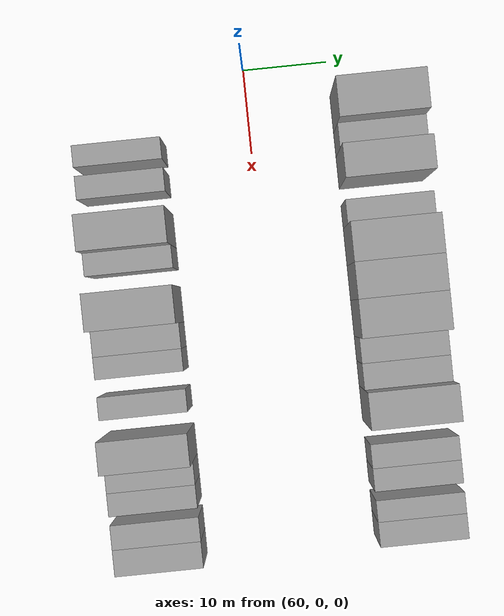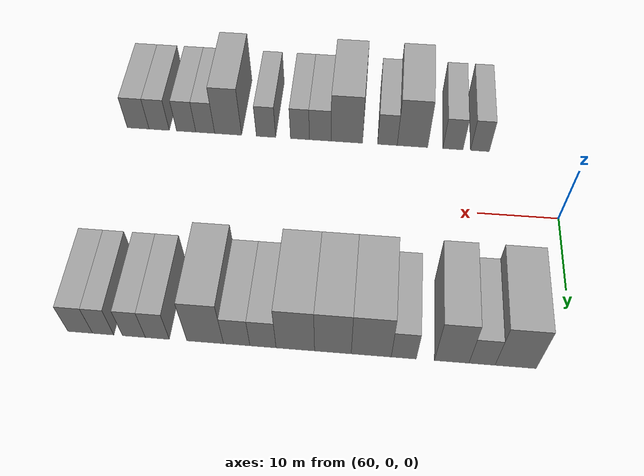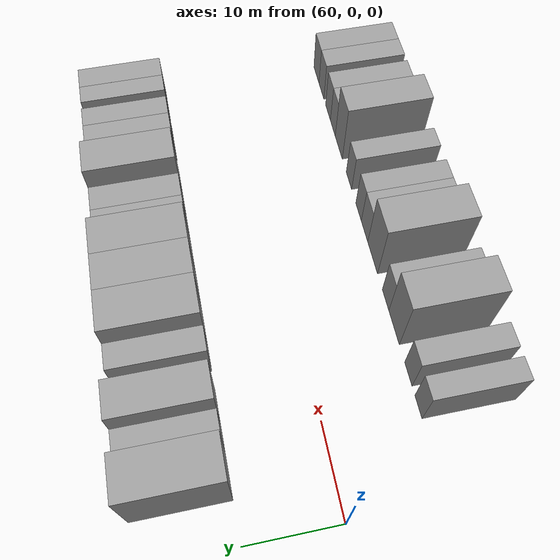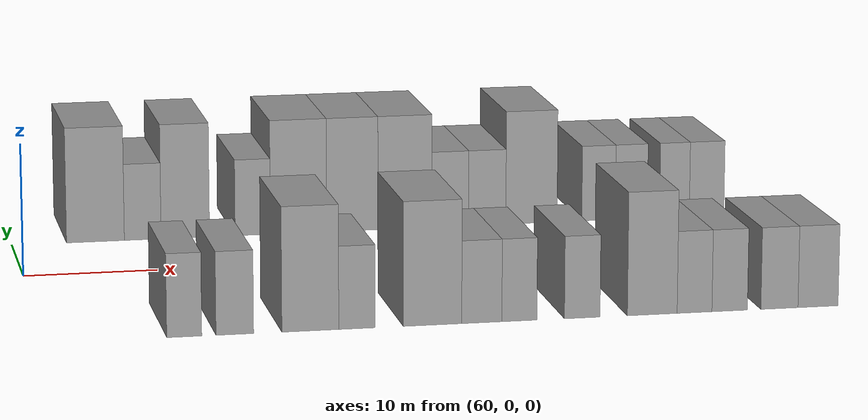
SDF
<sdf version="1.6">
 <world name="default">
  <model name="building_14">
   <static>1</static>
   <pose>66.4321 15.0000 0 0.000000 0.000000 1.570796</pose>
   <link name="link">
    <pose>0 0 4.50 0 0 0</pose>
    <collision name="collision"><geometry><box><size>10.0000 4.4736 9.0000</size></box></geometry></collision>
    <visual name="visual">
     <cast_shadows>0</cast_shadows>
     <geometry><box><size>10.0000 4.4736 9.0000</size></box></geometry>
     <material>
      <script>
       <uri>model://grey_wall/materials/scripts</uri>
       <uri>model://grey_wall/materials/textures</uri>
       <name>vrc/grey_wall</name>
      </script>
     </material>
    </visual>
   </link>
  </model>
  <model name="building_15">
   <static>1</static>
   <pose>70.0951 15.0000 0 0.000000 0.000000 1.570796</pose>
   <link name="link">
    <pose>0 0 3.00 0 0 0</pose>
    <collision name="collision"><geometry><box><size>10.0000 2.8523 6.0000</size></box></geometry></collision>
    <visual name="visual">
     <cast_shadows>0</cast_shadows>
     <geometry><box><size>10.0000 2.8523 6.0000</size></box></geometry>
     <material>
      <script>
       <uri>model://grey_wall/materials/scripts</uri>
       <uri>model://grey_wall/materials/textures</uri>
       <name>vrc/grey_wall</name>
      </script>
     </material>
    </visual>
   </link>
  </model>
  <model name="building_16">
   <static>1</static>
   <pose>73.4118 15.0000 0 0.000000 0.000000 1.570796</pose>
   <link name="link">
    <pose>0 0 4.50 0 0 0</pose>
    <collision name="collision"><geometry><box><size>10.0000 3.7812 9.0000</size></box></geometry></collision>
    <visual name="visual">
     <cast_shadows>0</cast_shadows>
     <geometry><box><size>10.0000 3.7812 9.0000</size></box></geometry>
     <material>
      <script>
       <uri>model://grey_wall/materials/scripts</uri>
       <uri>model://grey_wall/materials/textures</uri>
       <name>vrc/grey_wall</name>
      </script>
     </material>
    </visual>
   </link>
  </model>
  <model name="building_17">
   <static>1</static>
   <pose>78.6862 15.0000 0 0.000000 0.000000 1.570796</pose>
   <link name="link">
    <pose>0 0 3.00 0 0 0</pose>
    <collision name="collision"><geometry><box><size>10.0000 2.7675 6.0000</size></box></geometry></collision>
    <visual name="visual">
     <cast_shadows>0</cast_shadows>
     <geometry><box><size>10.0000 2.7675 6.0000</size></box></geometry>
     <material>
      <script>
       <uri>model://grey_wall/materials/scripts</uri>
       <uri>model://grey_wall/materials/textures</uri>
       <name>vrc/grey_wall</name>
      </script>
     </material>
    </visual>
   </link>
  </model>
  <model name="building_18">
   <static>1</static>
   <pose>82.2870 15.0000 0 0.000000 0.000000 1.570796</pose>
   <link name="link">
    <pose>0 0 4.50 0 0 0</pose>
    <collision name="collision"><geometry><box><size>10.0000 4.4342 9.0000</size></box></geometry></collision>
    <visual name="visual">
     <cast_shadows>0</cast_shadows>
     <geometry><box><size>10.0000 4.4342 9.0000</size></box></geometry>
     <material>
      <script>
       <uri>model://grey_wall/materials/scripts</uri>
       <uri>model://grey_wall/materials/textures</uri>
       <name>vrc/grey_wall</name>
      </script>
     </material>
    </visual>
   </link>
  </model>
  <model name="building_19">
   <static>1</static>
   <pose>86.5421 15.0000 0 0.000000 0.000000 1.570796</pose>
   <link name="link">
    <pose>0 0 4.50 0 0 0</pose>
    <collision name="collision"><geometry><box><size>10.0000 4.0760 9.0000</size></box></geometry></collision>
    <visual name="visual">
     <cast_shadows>0</cast_shadows>
     <geometry><box><size>10.0000 4.0760 9.0000</size></box></geometry>
     <material>
      <script>
       <uri>model://grey_wall/materials/scripts</uri>
       <uri>model://grey_wall/materials/textures</uri>
       <name>vrc/grey_wall</name>
      </script>
     </material>
    </visual>
   </link>
  </model>
  <model name="building_20">
   <static>1</static>
   <pose>90.7308 15.0000 0 0.000000 0.000000 1.570796</pose>
   <link name="link">
    <pose>0 0 4.50 0 0 0</pose>
    <collision name="collision"><geometry><box><size>10.0000 4.3013 9.0000</size></box></geometry></collision>
    <visual name="visual">
     <cast_shadows>0</cast_shadows>
     <geometry><box><size>10.0000 4.3013 9.0000</size></box></geometry>
     <material>
      <script>
       <uri>model://grey_wall/materials/scripts</uri>
       <uri>model://grey_wall/materials/textures</uri>
       <name>vrc/grey_wall</name>
      </script>
     </material>
    </visual>
   </link>
  </model>
  <model name="building_21">
   <static>1</static>
   <pose>94.3463 15.0000 0 0.000000 0.000000 1.570796</pose>
   <link name="link">
    <pose>0 0 3.00 0 0 0</pose>
    <collision name="collision"><geometry><box><size>10.0000 2.9298 6.0000</size></box></geometry></collision>
    <visual name="visual">
     <cast_shadows>0</cast_shadows>
     <geometry><box><size>10.0000 2.9298 6.0000</size></box></geometry>
     <material>
      <script>
       <uri>model://grey_wall/materials/scripts</uri>
       <uri>model://grey_wall/materials/textures</uri>
       <name>vrc/grey_wall</name>
      </script>
     </material>
    </visual>
   </link>
  </model>
  <model name="building_22">
   <static>1</static>
   <pose>97.3043 15.0000 0 0.000000 0.000000 1.570796</pose>
   <link name="link">
    <pose>0 0 3.00 0 0 0</pose>
    <collision name="collision"><geometry><box><size>10.0000 2.9861 6.0000</size></box></geometry></collision>
    <visual name="visual">
     <cast_shadows>0</cast_shadows>
     <geometry><box><size>10.0000 2.9861 6.0000</size></box></geometry>
     <material>
      <script>
       <uri>model://grey_wall/materials/scripts</uri>
       <uri>model://grey_wall/materials/textures</uri>
       <name>vrc/grey_wall</name>
      </script>
     </material>
    </visual>
   </link>
  </model>
  <model name="building_23">
   <static>1</static>
   <pose>100.8639 15.0000 0 0.000000 0.000000 1.570796</pose>
   <link name="link">
    <pose>0 0 4.50 0 0 0</pose>
    <collision name="collision"><geometry><box><size>10.0000 4.1332 9.0000</size></box></geometry></collision>
    <visual name="visual">
     <cast_shadows>0</cast_shadows>
     <geometry><box><size>10.0000 4.1332 9.0000</size></box></geometry>
     <material>
      <script>
       <uri>model://grey_wall/materials/scripts</uri>
       <uri>model://grey_wall/materials/textures</uri>
       <name>vrc/grey_wall</name>
      </script>
     </material>
    </visual>
   </link>
  </model>
  <model name="building_24">
   <static>1</static>
   <pose>106.2925 15.0000 0 0.000000 0.000000 1.570796</pose>
   <link name="link">
    <pose>0 0 3.00 0 0 0</pose>
    <collision name="collision"><geometry><box><size>10.0000 2.7241 6.0000</size></box></geometry></collision>
    <visual name="visual">
     <cast_shadows>0</cast_shadows>
     <geometry><box><size>10.0000 2.7241 6.0000</size></box></geometry>
     <material>
      <script>
       <uri>model://grey_wall/materials/scripts</uri>
       <uri>model://grey_wall/materials/textures</uri>
       <name>vrc/grey_wall</name>
      </script>
     </material>
    </visual>
   </link>
  </model>
  <model name="building_25">
   <static>1</static>
   <pose>108.9550 15.0000 0 0.000000 0.000000 1.570796</pose>
   <link name="link">
    <pose>0 0 3.00 0 0 0</pose>
    <collision name="collision"><geometry><box><size>10.0000 2.6010 6.0000</size></box></geometry></collision>
    <visual name="visual">
     <cast_shadows>0</cast_shadows>
     <geometry><box><size>10.0000 2.6010 6.0000</size></box></geometry>
     <material>
      <script>
       <uri>model://grey_wall/materials/scripts</uri>
       <uri>model://grey_wall/materials/textures</uri>
       <name>vrc/grey_wall</name>
      </script>
     </material>
    </visual>
   </link>
  </model>
  <model name="building_26">
   <static>1</static>
   <pose>112.4720 15.0000 0 0.000000 0.000000 1.570796</pose>
   <link name="link">
    <pose>0 0 3.00 0 0 0</pose>
    <collision name="collision"><geometry><box><size>10.0000 2.4330 6.0000</size></box></geometry></collision>
    <visual name="visual">
     <cast_shadows>0</cast_shadows>
     <geometry><box><size>10.0000 2.4330 6.0000</size></box></geometry>
     <material>
      <script>
       <uri>model://grey_wall/materials/scripts</uri>
       <uri>model://grey_wall/materials/textures</uri>
       <name>vrc/grey_wall</name>
      </script>
     </material>
    </visual>
   </link>
  </model>
  <model name="building_27">
   <static>1</static>
   <pose>115.1053 15.0000 0 0.000000 0.000000 1.570796</pose>
   <link name="link">
    <pose>0 0 3.00 0 0 0</pose>
    <collision name="collision"><geometry><box><size>10.0000 2.8334 6.0000</size></box></geometry></collision>
    <visual name="visual">
     <cast_shadows>0</cast_shadows>
     <geometry><box><size>10.0000 2.8334 6.0000</size></box></geometry>
     <material>
      <script>
       <uri>model://grey_wall/materials/scripts</uri>
       <uri>model://grey_wall/materials/textures</uri>
       <name>vrc/grey_wall</name>
      </script>
     </material>
    </visual>
   </link>
  </model>
  <model name="building_69">
   <static>1</static>
   <pose>69.4085 -15.0000 0 0.000000 0.000000 1.570796</pose>
   <link name="link">
    <pose>0 0 3.00 0 0 0</pose>
    <collision name="collision"><geometry><box><size>10.0000 2.4626 6.0000</size></box></geometry></collision>
    <visual name="visual">
     <cast_shadows>0</cast_shadows>
     <geometry><box><size>10.0000 2.4626 6.0000</size></box></geometry>
     <material>
      <script>
       <uri>model://grey_wall/materials/scripts</uri>
       <uri>model://grey_wall/materials/textures</uri>
       <name>vrc/grey_wall</name>
      </script>
     </material>
    </visual>
   </link>
  </model>
  <model name="building_70">
   <static>1</static>
   <pose>72.9666 -15.0000 0 0.000000 0.000000 1.570796</pose>
   <link name="link">
    <pose>0 0 3.00 0 0 0</pose>
    <collision name="collision"><geometry><box><size>10.0000 2.6536 6.0000</size></box></geometry></collision>
    <visual name="visual">
     <cast_shadows>0</cast_shadows>
     <geometry><box><size>10.0000 2.6536 6.0000</size></box></geometry>
     <material>
      <script>
       <uri>model://grey_wall/materials/scripts</uri>
       <uri>model://grey_wall/materials/textures</uri>
       <name>vrc/grey_wall</name>
      </script>
     </material>
    </visual>
   </link>
  </model>
  <model name="building_71">
   <static>1</static>
   <pose>78.3152 -15.0000 0 0.000000 0.000000 1.570796</pose>
   <link name="link">
    <pose>0 0 4.50 0 0 0</pose>
    <collision name="collision"><geometry><box><size>10.0000 4.0437 9.0000</size></box></geometry></collision>
    <visual name="visual">
     <cast_shadows>0</cast_shadows>
     <geometry><box><size>10.0000 4.0437 9.0000</size></box></geometry>
     <material>
      <script>
       <uri>model://grey_wall/materials/scripts</uri>
       <uri>model://grey_wall/materials/textures</uri>
       <name>vrc/grey_wall</name>
      </script>
     </material>
    </visual>
   </link>
  </model>
  <model name="building_72">
   <static>1</static>
   <pose>81.6415 -15.0000 0 0.000000 0.000000 1.570796</pose>
   <link name="link">
    <pose>0 0 3.00 0 0 0</pose>
    <collision name="collision"><geometry><box><size>10.0000 2.6089 6.0000</size></box></geometry></collision>
    <visual name="visual">
     <cast_shadows>0</cast_shadows>
     <geometry><box><size>10.0000 2.6089 6.0000</size></box></geometry>
     <material>
      <script>
       <uri>model://grey_wall/materials/scripts</uri>
       <uri>model://grey_wall/materials/textures</uri>
       <name>vrc/grey_wall</name>
      </script>
     </material>
    </visual>
   </link>
  </model>
  <model name="building_73">
   <static>1</static>
   <pose>87.0492 -15.0000 0 0.000000 0.000000 1.570796</pose>
   <link name="link">
    <pose>0 0 4.50 0 0 0</pose>
    <collision name="collision"><geometry><box><size>10.0000 4.2065 9.0000</size></box></geometry></collision>
    <visual name="visual">
     <cast_shadows>0</cast_shadows>
     <geometry><box><size>10.0000 4.2065 9.0000</size></box></geometry>
     <material>
      <script>
       <uri>model://grey_wall/materials/scripts</uri>
       <uri>model://grey_wall/materials/textures</uri>
       <name>vrc/grey_wall</name>
      </script>
     </material>
    </visual>
   </link>
  </model>
  <model name="building_74">
   <static>1</static>
   <pose>90.6027 -15.0000 0 0.000000 0.000000 1.570796</pose>
   <link name="link">
    <pose>0 0 3.00 0 0 0</pose>
    <collision name="collision"><geometry><box><size>10.0000 2.9004 6.0000</size></box></geometry></collision>
    <visual name="visual">
     <cast_shadows>0</cast_shadows>
     <geometry><box><size>10.0000 2.9004 6.0000</size></box></geometry>
     <material>
      <script>
       <uri>model://grey_wall/materials/scripts</uri>
       <uri>model://grey_wall/materials/textures</uri>
       <name>vrc/grey_wall</name>
      </script>
     </material>
    </visual>
   </link>
  </model>
  <model name="building_75">
   <static>1</static>
   <pose>93.3220 -15.0000 0 0.000000 0.000000 1.570796</pose>
   <link name="link">
    <pose>0 0 3.00 0 0 0</pose>
    <collision name="collision"><geometry><box><size>10.0000 2.5383 6.0000</size></box></geometry></collision>
    <visual name="visual">
     <cast_shadows>0</cast_shadows>
     <geometry><box><size>10.0000 2.5383 6.0000</size></box></geometry>
     <material>
      <script>
       <uri>model://grey_wall/materials/scripts</uri>
       <uri>model://grey_wall/materials/textures</uri>
       <name>vrc/grey_wall</name>
      </script>
     </material>
    </visual>
   </link>
  </model>
  <model name="building_76">
   <static>1</static>
   <pose>97.8906 -15.0000 0 0.000000 0.000000 1.570796</pose>
   <link name="link">
    <pose>0 0 3.00 0 0 0</pose>
    <collision name="collision"><geometry><box><size>10.0000 2.5989 6.0000</size></box></geometry></collision>
    <visual name="visual">
     <cast_shadows>0</cast_shadows>
     <geometry><box><size>10.0000 2.5989 6.0000</size></box></geometry>
     <material>
      <script>
       <uri>model://grey_wall/materials/scripts</uri>
       <uri>model://grey_wall/materials/textures</uri>
       <name>vrc/grey_wall</name>
      </script>
     </material>
    </visual>
   </link>
  </model>
  <model name="building_77">
   <static>1</static>
   <pose>103.0183 -15.0000 0 0.000000 0.000000 1.570796</pose>
   <link name="link">
    <pose>0 0 4.50 0 0 0</pose>
    <collision name="collision"><geometry><box><size>10.0000 3.6564 9.0000</size></box></geometry></collision>
    <visual name="visual">
     <cast_shadows>0</cast_shadows>
     <geometry><box><size>10.0000 3.6564 9.0000</size></box></geometry>
     <material>
      <script>
       <uri>model://grey_wall/materials/scripts</uri>
       <uri>model://grey_wall/materials/textures</uri>
       <name>vrc/grey_wall</name>
      </script>
     </material>
    </visual>
   </link>
  </model>
  <model name="building_78">
   <static>1</static>
   <pose>106.1299 -15.0000 0 0.000000 0.000000 1.570796</pose>
   <link name="link">
    <pose>0 0 3.00 0 0 0</pose>
    <collision name="collision"><geometry><box><size>10.0000 2.5667 6.0000</size></box></geometry></collision>
    <visual name="visual">
     <cast_shadows>0</cast_shadows>
     <geometry><box><size>10.0000 2.5667 6.0000</size></box></geometry>
     <material>
      <script>
       <uri>model://grey_wall/materials/scripts</uri>
       <uri>model://grey_wall/materials/textures</uri>
       <name>vrc/grey_wall</name>
      </script>
     </material>
    </visual>
   </link>
  </model>
  <model name="building_79">
   <static>1</static>
   <pose>108.7253 -15.0000 0 0.000000 0.000000 1.570796</pose>
   <link name="link">
    <pose>0 0 3.00 0 0 0</pose>
    <collision name="collision"><geometry><box><size>10.0000 2.6242 6.0000</size></box></geometry></collision>
    <visual name="visual">
     <cast_shadows>0</cast_shadows>
     <geometry><box><size>10.0000 2.6242 6.0000</size></box></geometry>
     <material>
      <script>
       <uri>model://grey_wall/materials/scripts</uri>
       <uri>model://grey_wall/materials/textures</uri>
       <name>vrc/grey_wall</name>
      </script>
     </material>
    </visual>
   </link>
  </model>
  <model name="building_80">
   <static>1</static>
   <pose>112.4185 -15.0000 0 0.000000 0.000000 1.570796</pose>
   <link name="link">
    <pose>0 0 3.00 0 0 0</pose>
    <collision name="collision"><geometry><box><size>10.0000 2.7622 6.0000</size></box></geometry></collision>
    <visual name="visual">
     <cast_shadows>0</cast_shadows>
     <geometry><box><size>10.0000 2.7622 6.0000</size></box></geometry>
     <material>
      <script>
       <uri>model://grey_wall/materials/scripts</uri>
       <uri>model://grey_wall/materials/textures</uri>
       <name>vrc/grey_wall</name>
      </script>
     </material>
    </visual>
   </link>
  </model>
  <model name="building_81">
   <static>1</static>
   <pose>115.2951 -15.0000 0 0.000000 0.000000 1.570796</pose>
   <link name="link">
    <pose>0 0 3.00 0 0 0</pose>
    <collision name="collision"><geometry><box><size>10.0000 2.9910 6.0000</size></box></geometry></collision>
    <visual name="visual">
     <cast_shadows>0</cast_shadows>
     <geometry><box><size>10.0000 2.9910 6.0000</size></box></geometry>
     <material>
      <script>
       <uri>model://grey_wall/materials/scripts</uri>
       <uri>model://grey_wall/materials/textures</uri>
       <name>vrc/grey_wall</name>
      </script>
     </material>
    </visual>
   </link>
  </model>
 </world>
</sdf>
